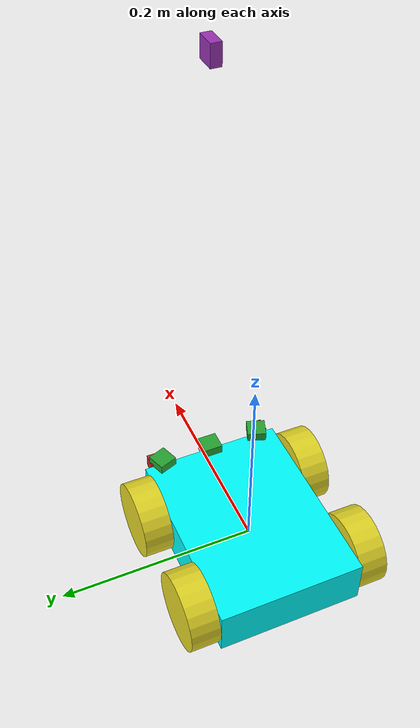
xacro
<?xml version='1.0'?>

<robot name="robot" xmlns:xacro="http://www.ros.org/wiki/xacro">

  <xacro:property name="camera_width" value="0.02"/>
  <xacro:property name="camera_length" value="0.02"/>
  <xacro:property name="camera_height" value="0.01"/>
  <xacro:property name="camera_mass" value="0.01"/>
  <xacro:property name="chassis_width" value="0.15"/>
  <xacro:property name="chassis_length" value="0.2"/>
  <xacro:property name="chassis_height" value="0.05"/>
  <xacro:property name="chassis_mass" value="0.5"/>
  <xacro:property name="wheel_radius" value="0.04"/>
  <xacro:property name="wheel_width" value="0.03"/>
  <xacro:property name="wheel_mass" value="0.025"/>

  <!-- NEW -->

  <xacro:property name="enable_front_left_camera" value="true"/>
  <xacro:property name="enable_front_right_camera" value="true"/>

  <xacro:property name="front_camera_yaw_deg" value="20"/>
  <xacro:property name="front_camera_yaw" value="${front_camera_yaw_deg * 3.14159265359 / 180.0}"/>

  <xacro:property name="range_sensor_size" value="0.015"/>
  <xacro:property name="range_sensor_mass" value="0.01"/>

  <xacro:property name="enable_front_ranges" value="true"/>

  <xacro:property name="front_range_size" value="0.015"/>
  <xacro:property name="front_range_mass" value="0.01"/>

  <xacro:property name="front_range_x" value="${chassis_length/2 + front_range_size/2}"/>
  <xacro:property name="front_range_z" value="0.02"/>

  <!-- left/right positions -->
  <xacro:property name="front_range_left_y" value="${chassis_width/2 - 0.015}"/>
  <xacro:property name="front_range_center_y" value="0.0"/>
  <xacro:property name="front_range_right_y" value="-${chassis_width/2 - 0.015}"/>

  <!-- yaw angles in degrees -->
  <xacro:property name="front_range_left_yaw_deg" value="90"/>
  <xacro:property name="front_range_center_yaw_deg" value="0"/>
  <xacro:property name="front_range_right_yaw_deg" value="-90"/>

  <xacro:property name="front_range_left_yaw" value="${front_range_left_yaw_deg * 3.14159265359 / 180.0}"/>
  <xacro:property name="front_range_center_yaw" value="${front_range_center_yaw_deg * 3.14159265359 / 180.0}"/>
  <xacro:property name="front_range_right_yaw" value="${front_range_right_yaw_deg * 3.14159265359 / 180.0}"/>

  <xacro:property name="front_range_min" value="0.02"/>
  <xacro:property name="front_range_max" value="5.0"/>
  <xacro:property name="front_range_resolution" value="0.01"/>

  <xacro:property name="enable_top_camera" value="true"/>
  <xacro:property name="top_camera_height_from_bottom" value="0.5"/>
  <xacro:property name="top_camera_z" value="${-chassis_height/2 + top_camera_height_from_bottom}"/>
  <xacro:property name="top_camera_fov" value="1.57"/>

  <!-- ORIGINAL -->

  <xacro:include filename="$(find robbie)/urdf/macros.xacro"/>
  <xacro:include filename="$(find robbie)/urdf/materials.xacro"/>

  <link name='chassis'>
    <xacro:box_inertial name="chassis" m="${chassis_mass}" x="${chassis_length}" y="${chassis_width}" z="${chassis_height}"/>
    <collision name='chassis_collision'>
      <geometry>
        <box size="${chassis_length} ${chassis_width} ${chassis_height}"/>
      </geometry>
    </collision>
    <visual name='chassis_visual'>
      <origin xyz="0 0 0" rpy=" 0 0 0"/>
      <geometry>
        <box size="${chassis_length} ${chassis_width} ${chassis_height}"/>
      </geometry>
      <material name="Cyan">
        <color rgba="0 1.0 1.0 1.0"/>
      </material>
    </visual>
  </link>

  <link name='wheel_FR'>
    <xacro:cylinder_inertial name="wheel_FR" m="${wheel_mass}" r="${wheel_radius}" h="${wheel_width}"/>
    <collision name='wheel_FR_collision'>
      <origin xyz="0 0 0" rpy="1.5708 0 0"/>
      <geometry>
        <cylinder radius="${wheel_radius}" length="${wheel_width}"/>
      </geometry>
    </collision>
    <visual name='wheel_FR_visual'>
      <origin xyz="0 0 0" rpy="1.5708 0 0"/>
      <geometry>
        <cylinder radius="${wheel_radius}" length="${wheel_width}"/>
      </geometry>
    </visual>
  </link>

  <link name='wheel_FL'>
    <xacro:cylinder_inertial name="wheel_FL" m="${wheel_mass}" r="${wheel_radius}" h="${wheel_width}"/>
    <collision name='wheel_FL_collision'>
      <origin xyz="0 0 0" rpy="1.5708 0 0"/>
      <geometry>
        <cylinder radius="${wheel_radius}" length="${wheel_width}"/>
      </geometry>
    </collision>
    <visual name='wheel_FL_visual'>
      <origin xyz="0 0 0" rpy="1.5708 0 0"/>
      <geometry>
        <cylinder radius="${wheel_radius}" length="${wheel_width}"/>
      </geometry>
    </visual>
  </link>

  <link name='wheel_RR'>
    <xacro:cylinder_inertial name="wheel_RR" m="${wheel_mass}" r="${wheel_radius}" h="${wheel_width}"/>
    <collision name='wheel_RR_collision'>
      <origin xyz="0 0 0" rpy="1.5708 0 0"/>
      <geometry>
        <cylinder radius="${wheel_radius}" length="${wheel_width}"/>
      </geometry>
    </collision>
    <visual name='wheel_RR_visual'>
      <origin xyz="0 0 0" rpy="1.5708 0 0"/>
      <geometry>
        <cylinder radius="${wheel_radius}" length="${wheel_width}"/>
      </geometry>
    </visual>
  </link>

  <link name='wheel_RL'>
    <xacro:cylinder_inertial name="wheel_RL" m="${wheel_mass}" r="${wheel_radius}" h="${wheel_width}"/>
    <collision name='wheel_RL_collision'>
      <origin xyz="0 0 0" rpy="1.5708 0 0"/>
      <geometry>
        <cylinder radius="${wheel_radius}" length="${wheel_width}"/>
      </geometry>
    </collision>
    <visual name='wheel_RL_visual'>
      <origin xyz="0 0 0" rpy="1.5708 0 0"/>
      <geometry>
        <cylinder radius="${wheel_radius}" length="${wheel_width}"/>
      </geometry>
    </visual>
  </link>

  <link name='camera_link'>
    <xacro:box_inertial name="camera_link" m="${camera_mass}" x="${camera_width}" y="${camera_length}" z="${camera_height}"/>
    <collision name='camera_link_collision'>
      <geometry>
        <box size="${camera_length} ${camera_width} ${camera_height}"/>
      </geometry>
    </collision>
    <visual name='camera_link_visual'>
      <origin xyz="0 0 0" rpy=" 0 0 0"/>
      <geometry>
        <box size="${camera_length} ${camera_width} ${camera_height}"/>
      </geometry>
    </visual>
  </link>

  <joint name="wheel_FR_joint" type="continuous">
    <parent link="chassis"/>
    <child link="wheel_FR"/>
    <origin xyz="${chassis_length/2-wheel_radius} -${chassis_width/2+wheel_width/2} 0"
            rpy="0 0 0"/>
    <axis xyz="0 1 0"/>
  </joint>

  <joint name="wheel_FL_joint" type="continuous">
    <parent link="chassis"/>
    <child link="wheel_FL"/>
    <origin xyz="${chassis_length/2-wheel_radius} ${chassis_width/2+wheel_width/2} 0"
            rpy="0 0 0"/>
    <axis xyz="0 1 0"/>
  </joint>

  <joint name="wheel_RR_joint" type="continuous">
    <parent link="chassis"/>
    <child link="wheel_RR"/>
    <origin xyz="-${chassis_length/2-wheel_radius} -${chassis_width/2+wheel_width/2} 0"
            rpy="0 0 0"/>
    <axis xyz="0 1 0"/>
  </joint>

  <joint name="wheel_RL_joint" type="continuous">
    <parent link="chassis"/>
    <child link="wheel_RL"/>
    <origin xyz="-${chassis_length/2-wheel_radius} ${chassis_width/2+wheel_width/2} 0"
            rpy="0 0 0"/>
    <axis xyz="0 1 0"/>
  </joint>

  <joint name="camera_joint" type="fixed">
    <parent link="chassis"/>
    <child link="camera_link"/>
    <origin xyz="${chassis_length/2} 0 ${chassis_height/2+camera_height/2}"/>
  </joint>

  <gazebo reference="chassis">
    <material>Gazebo/Orange</material>
  </gazebo>

  <gazebo reference="camera_link">
    <material>Gazebo/Green</material>
  </gazebo>

  <gazebo reference="wheel_FL">
    <material>Gazebo/Yellow</material>
  </gazebo>

  <gazebo reference="wheel_FR">
    <material>Gazebo/Yellow</material>
  </gazebo>

  <gazebo reference="wheel_RL">
    <material>Gazebo/Yellow</material>
  </gazebo>

  <gazebo reference="wheel_RR">
    <material>Gazebo/Yellow</material>
  </gazebo>

  <gazebo>
    <plugin name="planar_move_controller" filename="libgazebo_ros_planar_move.so">
      <commandTopic>cmd_vel</commandTopic>
      <odometryTopic>odom</odometryTopic>
      <odometryFrame>odom</odometryFrame>
      <robotBaseFrame>chassis</robotBaseFrame>
      <odometryRate>20.0</odometryRate>
    </plugin>
  </gazebo>

  <gazebo reference="camera_link">
    <sensor type="camera" name="camera1">
      <update_rate>30.0</update_rate>
      <camera name="head">
        <horizontal_fov>1.3962634</horizontal_fov>
        <image>
          <width>1600</width>
          <height>1600</height>
          <format>R8G8B8</format>
        </image>
        <clip>
          <near>0.02</near>
          <far>300</far>
        </clip>
        <noise>
          <type>gaussian</type>
          <!-- Noise is sampled independently per pixel on each frame.
              That pixel's noise value is added to each of its color
              channels, which at that point lie in the range [0,1]. -->
          <mean>0.0</mean>
          <stddev>0.007</stddev>
        </noise>
      </camera>
      <plugin name="camera_controller" filename="libgazebo_ros_camera.so">
        <alwaysOn>true</alwaysOn>
        <updateRate>0.0</updateRate>
        <cameraName>rrbot/camera1</cameraName>
        <imageTopicName>image_raw</imageTopicName>
        <cameraInfoTopicName>camera_info</cameraInfoTopicName>
        <frameName>camera_link</frameName>
        <hackBaseline>0.07</hackBaseline>
        <distortionK1>0.0</distortionK1>
        <distortionK2>0.0</distortionK2>
        <distortionK3>0.0</distortionK3>
        <distortionT1>0.0</distortionT1>
        <distortionT2>0.0</distortionT2>
      </plugin>
    </sensor>
  </gazebo>

  <!-- CAMERAS -->

  <xacro:if value="${enable_front_left_camera}">
    <link name='camera_fl_link'>
      <xacro:box_inertial name="camera_fl_link" m="${camera_mass}" x="${camera_width}" y="${camera_length}" z="${camera_height}"/>
      <collision name='camera_fl_link_collision'>
        <geometry>
          <box size="${camera_length} ${camera_width} ${camera_height}"/>
        </geometry>
      </collision>
      <visual name='camera_fl_link_visual'>
        <geometry>
          <box size="${camera_length} ${camera_width} ${camera_height}"/>
        </geometry>
      </visual>
    </link>

    <joint name="camera_fl_joint" type="fixed">
      <parent link="chassis"/>
      <child link="camera_fl_link"/>
      <origin xyz="${chassis_length/2} ${chassis_width/2 - 0.02} ${chassis_height/2 + camera_height/2}"
              rpy="0 0 ${front_camera_yaw}"/>
    </joint>

    <gazebo reference="camera_fl_link">
      <material>Gazebo/Green</material>
    </gazebo>

    <gazebo reference="camera_fl_link">
      <sensor type="camera" name="camera_fl_sensor">
        <update_rate>30.0</update_rate>
        <camera name="camera_fl">
          <horizontal_fov>1.3962634</horizontal_fov>
          <image>
            <width>1600</width>
            <height>1600</height>
            <format>R8G8B8</format>
          </image>
          <clip>
            <near>0.02</near>
            <far>300</far>
          </clip>
          <noise>
            <type>gaussian</type>
            <!-- Noise is sampled independently per pixel on each frame.
                That pixel's noise value is added to each of its color
                channels, which at that point lie in the range [0,1]. -->
            <mean>0.0</mean>
            <stddev>0.007</stddev>
          </noise>
        </camera>
        <plugin name="camera_fl_controller" filename="libgazebo_ros_camera.so">
          <alwaysOn>true</alwaysOn>
          <updateRate>0.0</updateRate>
          <cameraName>robot/camera_fl</cameraName>
          <imageTopicName>image_raw</imageTopicName>
          <cameraInfoTopicName>camera_info</cameraInfoTopicName>
          <frameName>camera_fl_link</frameName>
        </plugin>
      </sensor>
    </gazebo>
  </xacro:if>

  <xacro:if value="${enable_front_right_camera}">
    <link name='camera_fr_link'>
      <xacro:box_inertial name="camera_fr_link" m="${camera_mass}" x="${camera_width}" y="${camera_length}" z="${camera_height}"/>
      <collision name='camera_fr_link_collision'>
        <geometry>
          <box size="${camera_length} ${camera_width} ${camera_height}"/>
        </geometry>
      </collision>
      <visual name='camera_fr_link_visual'>
        <geometry>
          <box size="${camera_length} ${camera_width} ${camera_height}"/>
        </geometry>
      </visual>
    </link>

    <joint name="camera_fr_joint" type="fixed">
      <parent link="chassis"/>
      <child link="camera_fr_link"/>
      <origin xyz="${chassis_length/2} -${chassis_width/2 - 0.02} ${chassis_height/2 + camera_height/2}"
              rpy="0 0 -${front_camera_yaw}"/>
    </joint>

    <gazebo reference="camera_fr_link">
      <material>Gazebo/Green</material>
    </gazebo>

    <gazebo reference="camera_fr_link">
      <sensor type="camera" name="camera_fr_sensor">
        <update_rate>30.0</update_rate>
        <camera name="camera_fr">
          <horizontal_fov>1.3962634</horizontal_fov>
          <image>
            <width>1600</width>
            <height>1600</height>
            <format>R8G8B8</format>
          </image>
          <clip>
            <near>0.02</near>
            <far>300</far>
          </clip>
          <noise>
            <type>gaussian</type>
            <!-- Noise is sampled independently per pixel on each frame.
                That pixel's noise value is added to each of its color
                channels, which at that point lie in the range [0,1]. -->
            <mean>0.0</mean>
            <stddev>0.007</stddev>
          </noise>
        </camera>
        <plugin name="camera_fr_controller" filename="libgazebo_ros_camera.so">
          <alwaysOn>true</alwaysOn>
          <updateRate>0.0</updateRate>
          <cameraName>robot/camera_fr</cameraName>
          <imageTopicName>image_raw</imageTopicName>
          <cameraInfoTopicName>camera_info</cameraInfoTopicName>
          <frameName>camera_fr_link</frameName>
        </plugin>
      </sensor>
    </gazebo>
  </xacro:if>

  <xacro:if value="${enable_front_ranges}">

  <xacro:if value="${enable_top_camera}">
    <link name='camera_top_link'>
      <xacro:box_inertial name="camera_top_link" m="${camera_mass}" x="${camera_width}" y="${camera_length}" z="${camera_height}"/>
      <collision name='camera_top_link_collision'>
        <geometry>
          <box size="${camera_length} ${camera_width} ${camera_height}"/>
        </geometry>
      </collision>
      <visual name='camera_top_link_visual'>
        <geometry>
          <box size="${camera_length} ${camera_width} ${camera_height}"/>
        </geometry>
      </visual>
    </link>

    <joint name="camera_top_joint" type="fixed">
      <parent link="chassis"/>
      <child link="camera_top_link"/>
      <origin xyz="${chassis_length/2} 0 ${top_camera_z}" rpy="0 1.5708 -1.5708"/>
    </joint>

    <gazebo reference="camera_top_link">
      <material>Gazebo/Purple</material>
    </gazebo>

    <gazebo reference="camera_top_link">
      <sensor type="camera" name="camera_top_sensor">
        <update_rate>30.0</update_rate>
        <camera name="camera_top">
          <horizontal_fov>${top_camera_fov}</horizontal_fov>
          <image>
            <width>1600</width>
            <height>1600</height>
            <format>R8G8B8</format>
          </image>
          <clip>
            <near>0.02</near>
            <far>5.0</far>
          </clip>
          <noise>
            <type>gaussian</type>
            <!-- Noise is sampled independently per pixel on each frame.
                That pixel's noise value is added to each of its color
                channels, which at that point lie in the range [0,1]. -->
            <mean>0.0</mean>
            <stddev>0.007</stddev>
          </noise>
        </camera>
        <plugin name="camera_top_controller" filename="libgazebo_ros_camera.so">
          <alwaysOn>true</alwaysOn>
          <updateRate>0.0</updateRate>
          <cameraName>robot/camera_top</cameraName>
          <imageTopicName>image_raw</imageTopicName>
          <cameraInfoTopicName>camera_info</cameraInfoTopicName>
          <frameName>camera_top_link</frameName>
        </plugin>
      </sensor>
    </gazebo>
  </xacro:if>

  <!-- LEFT FRONT RANGE SENSOR -->
  <link name="range_front_left_link">
    <xacro:box_inertial name="range_front_left_link"
                        m="${front_range_mass}"
                        x="${front_range_size}"
                        y="${front_range_size}"
                        z="${front_range_size}"/>
    <collision name="range_front_left_collision">
      <geometry>
        <box size="${front_range_size} ${front_range_size} ${front_range_size}"/>
      </geometry>
    </collision>
    <visual name="range_front_left_visual">
      <geometry>
        <box size="${front_range_size} ${front_range_size} ${front_range_size}"/>
      </geometry>
    </visual>
  </link>

  <joint name="range_front_left_joint" type="fixed">
    <parent link="chassis"/>
    <child link="range_front_left_link"/>
    <origin xyz="${front_range_x} ${front_range_left_y} ${front_range_z}"
            rpy="0 0 ${front_range_left_yaw}"/>
  </joint>

  <gazebo reference="range_front_left_link">
    <material>Gazebo/Red</material>
  </gazebo>

  <gazebo reference="range_front_left_link">
    <sensor type="ray" name="range_front_left_sensor">
      <update_rate>20.0</update_rate>
      <ray>
        <scan>
          <horizontal>
            <samples>1</samples>
            <resolution>1</resolution>
            <min_angle>0.0</min_angle>
            <max_angle>0.0</max_angle>
          </horizontal>
        </scan>
        <range>
          <min>${front_range_min}</min>
          <max>${front_range_max}</max>
          <resolution>${front_range_resolution}</resolution>
        </range>
      </ray>
      <plugin name="range_front_left_plugin" filename="libgazebo_ros_range.so">
        <robotNamespace>/B1</robotNamespace>
        <topicName>range_front_left</topicName>
        <frameName>range_front_left_link</frameName>
        <radiation>infrared</radiation>
        <fov>0.05</fov>
        <gaussianNoise>0.0</gaussianNoise>
      </plugin>
    </sensor>
  </gazebo>

  <!-- CENTER FRONT RANGE SENSOR -->
  <link name="range_front_center_link">
    <xacro:box_inertial name="range_front_center_link"
                        m="${front_range_mass}"
                        x="${front_range_size}"
                        y="${front_range_size}"
                        z="${front_range_size}"/>
    <collision name="range_front_center_collision">
      <geometry>
        <box size="${front_range_size} ${front_range_size} ${front_range_size}"/>
      </geometry>
    </collision>
    <visual name="range_front_center_visual">
      <geometry>
        <box size="${front_range_size} ${front_range_size} ${front_range_size}"/>
      </geometry>
    </visual>
  </link>

  <joint name="range_front_center_joint" type="fixed">
    <parent link="chassis"/>
    <child link="range_front_center_link"/>
    <origin xyz="${front_range_x} ${front_range_center_y} ${front_range_z}"
            rpy="0 0 ${front_range_center_yaw}"/>
  </joint>

  <gazebo reference="range_front_center_link">
    <material>Gazebo/Red</material>
  </gazebo>

  <gazebo reference="range_front_center_link">
    <sensor type="ray" name="range_front_center_sensor">
      <update_rate>20.0</update_rate>
      <ray>
        <scan>
          <horizontal>
            <samples>1</samples>
            <resolution>1</resolution>
            <min_angle>0.0</min_angle>
            <max_angle>0.0</max_angle>
          </horizontal>
        </scan>
        <range>
          <min>${front_range_min}</min>
          <max>${front_range_max}</max>
          <resolution>${front_range_resolution}</resolution>
        </range>
      </ray>
      <plugin name="range_front_center_plugin" filename="libgazebo_ros_range.so">
        <robotNamespace>/B1</robotNamespace>
        <topicName>range_front_center</topicName>
        <frameName>range_front_center_link</frameName>
        <radiation>infrared</radiation>
        <fov>0.05</fov>
        <gaussianNoise>0.0</gaussianNoise>
      </plugin>
    </sensor>
  </gazebo>

  <!-- RIGHT FRONT RANGE SENSOR -->
  <link name="range_front_right_link">
    <xacro:box_inertial name="range_front_right_link"
                        m="${front_range_mass}"
                        x="${front_range_size}"
                        y="${front_range_size}"
                        z="${front_range_size}"/>
    <collision name="range_front_right_collision">
      <geometry>
        <box size="${front_range_size} ${front_range_size} ${front_range_size}"/>
      </geometry>
    </collision>
    <visual name="range_front_right_visual">
      <geometry>
        <box size="${front_range_size} ${front_range_size} ${front_range_size}"/>
      </geometry>
    </visual>
  </link>

  <joint name="range_front_right_joint" type="fixed">
    <parent link="chassis"/>
    <child link="range_front_right_link"/>
    <origin xyz="${front_range_x} ${front_range_right_y} ${front_range_z}"
            rpy="0 0 ${front_range_right_yaw}"/>
  </joint>

  <gazebo reference="range_front_right_link">
    <material>Gazebo/Red</material>
  </gazebo>

  <gazebo reference="range_front_right_link">
    <sensor type="ray" name="range_front_right_sensor">
      <update_rate>20.0</update_rate>
      <ray>
        <scan>
          <horizontal>
            <samples>1</samples>
            <resolution>1</resolution>
            <min_angle>0.0</min_angle>
            <max_angle>0.0</max_angle>
          </horizontal>
        </scan>
        <range>
          <min>${front_range_min}</min>
          <max>${front_range_max}</max>
          <resolution>${front_range_resolution}</resolution>
        </range>
      </ray>
      <plugin name="range_front_right_plugin" filename="libgazebo_ros_range.so">
        <robotNamespace>/B1</robotNamespace>
        <topicName>range_front_right</topicName>
        <frameName>range_front_right_link</frameName>
        <radiation>infrared</radiation>
        <fov>0.05</fov>
        <gaussianNoise>0.0</gaussianNoise>
      </plugin>
    </sensor>
  </gazebo>

</xacro:if>

</robot>
